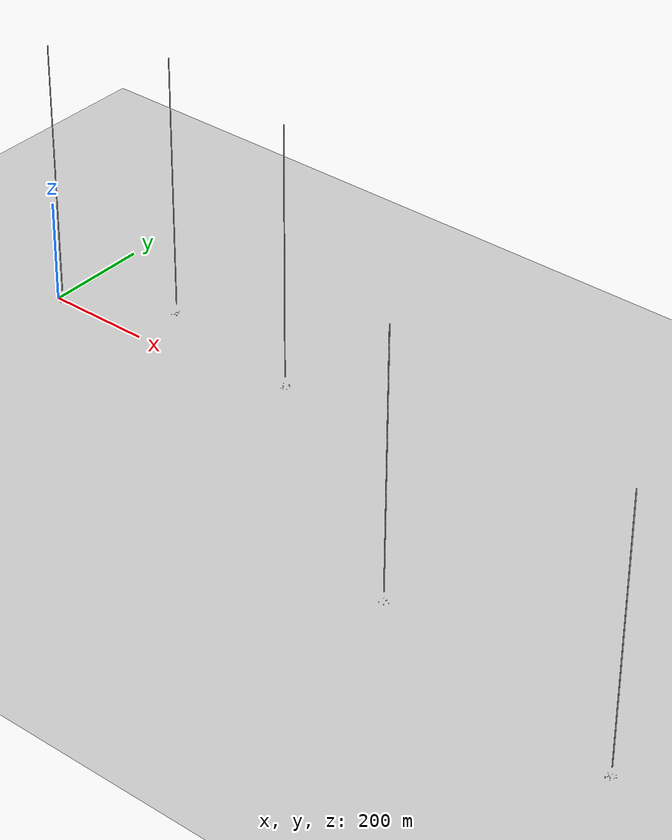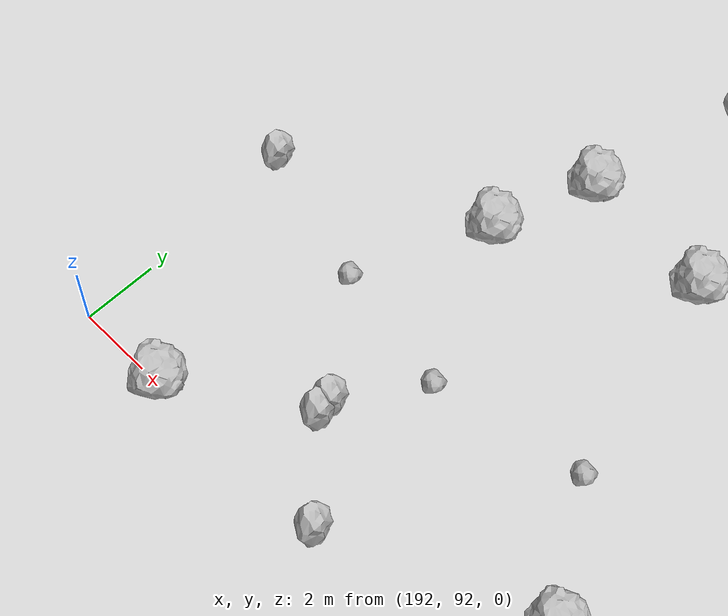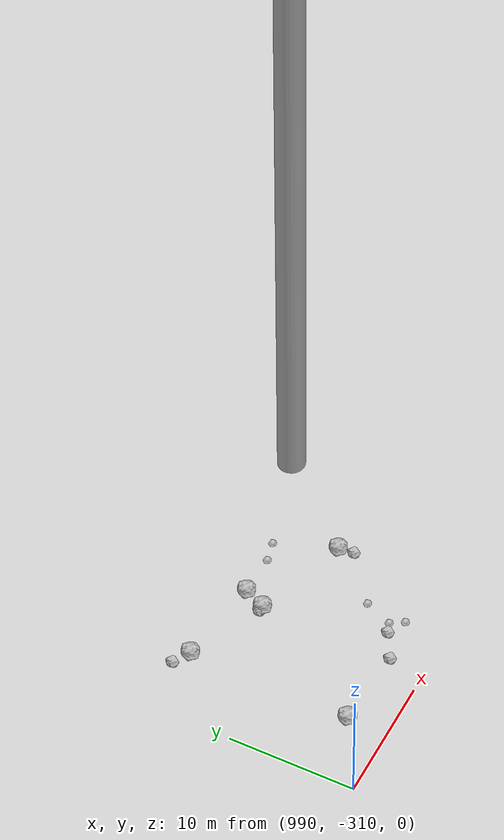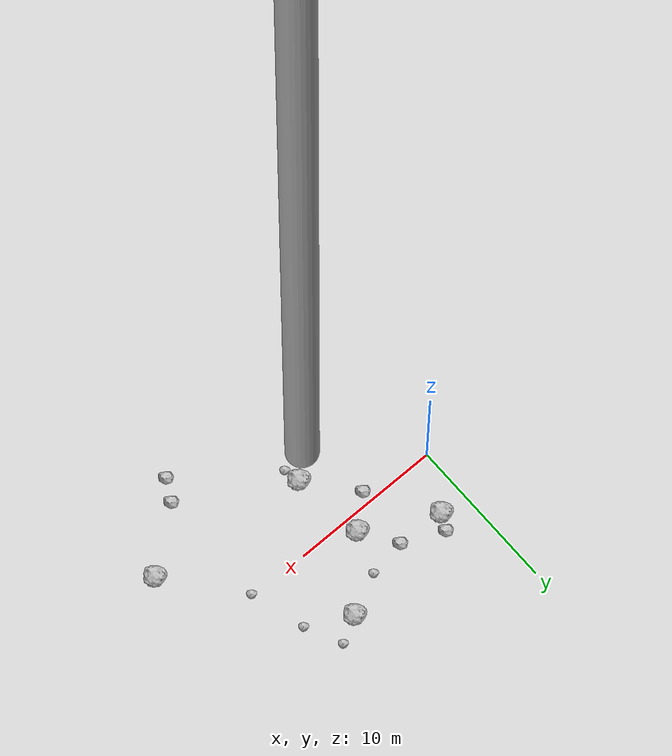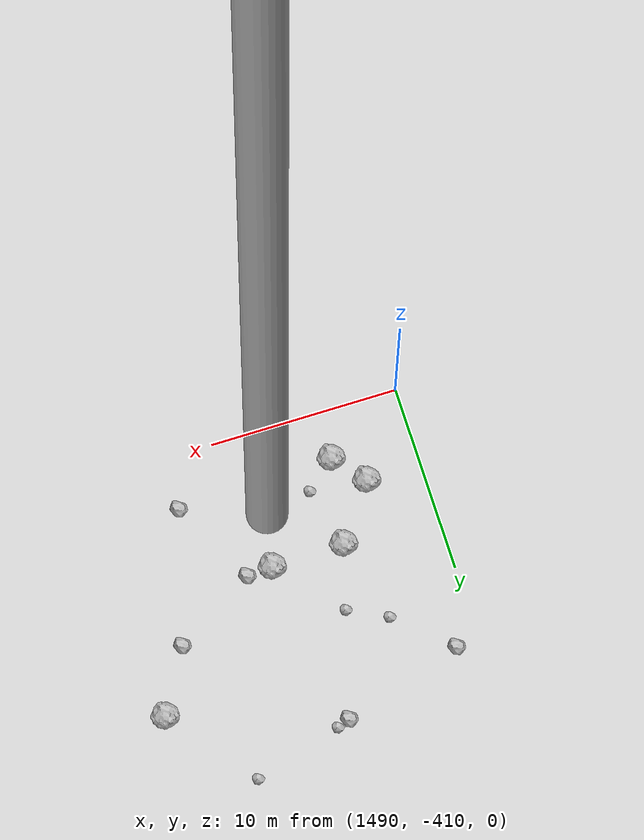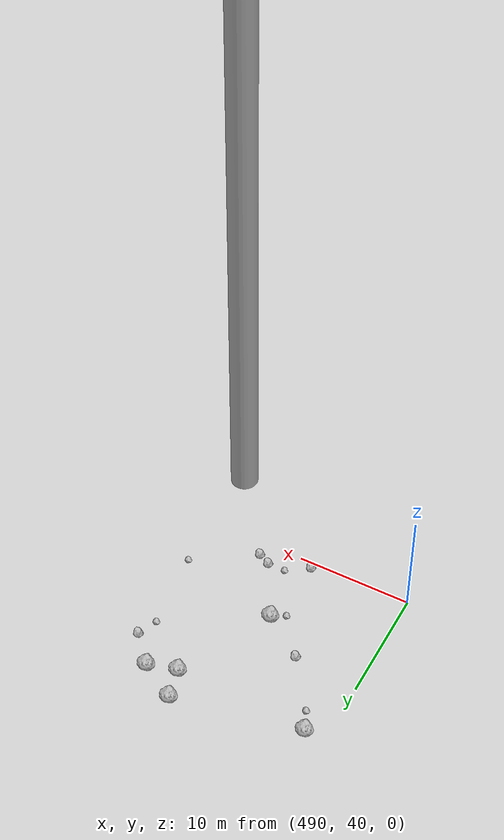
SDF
<?xml version="1.0" ?>
<sdf version="1.6">
  <world name="default">

    <include>
      <uri>model://custom_ground</uri>
    </include>

    <include>
      <uri>model://sun</uri>
    </include>

    <spherical_coordinates>
      <surface_model>EARTH_WGS84</surface_model>
      <latitude_deg>38.161479</latitude_deg>
      <longitude_deg>-122.454630</longitude_deg>
      <elevation>488.0</elevation>
      <heading_deg>90</heading_deg>
    </spherical_coordinates>

    <model name="rock1_0_0">
      <include>
        <uri>model://rock1</uri>
        <pose>1.903809025470613 3.4052893876274677 0.5 0 0 0</pose>
      </include>
    </model>
    <model name="rock1_0_1">
      <include>
        <uri>model://rock1</uri>
        <pose>17.752156283129764 -4.858993381580905 0.5 0 0 0</pose>
      </include>
    </model>
    <model name="rock1_0_2">
      <include>
        <uri>model://rock1</uri>
        <pose>6.545627376117289 0.9424512838125523 0.5 0 0 0</pose>
      </include>
    </model>
    <model name="rock1_0_3">
      <include>
        <uri>model://rock1</uri>
        <pose>7.125065360291671 -3.8455337252434907 0.5 0 0 0</pose>
      </include>
    </model>
    <model name="rock1_0_4">
      <include>
        <uri>model://rock1</uri>
        <pose>10.154929105432641 4.87819296638305 0.5 0 0 0</pose>
      </include>
    </model>
    <model name="rock2_0_0">
      <include>
        <uri>model://rock2</uri>
        <pose>4.571596444963452 -0.7528654541336195 0.3 0 0 0</pose>
      </include>
    </model>
    <model name="rock2_0_1">
      <include>
        <uri>model://rock2</uri>
        <pose>5.024757103439105 3.2480589192254676 0.3 0 0 0</pose>
      </include>
    </model>
    <model name="rock2_0_2">
      <include>
        <uri>model://rock2</uri>
        <pose>13.882769026436684 -7.866449808721061 0.3 0 0 0</pose>
      </include>
    </model>
    <model name="rock2_0_3">
      <include>
        <uri>model://rock2</uri>
        <pose>13.120535906577288 -9.26545420873963 0.3 0 0 0</pose>
      </include>
    </model>
    <model name="rock2_0_4">
      <include>
        <uri>model://rock2</uri>
        <pose>2.3833469673908114 4.4424991326777 0.3 0 0 0</pose>
      </include>
    </model>
    <model name="rock3_0_0">
      <include>
        <uri>model://rock3</uri>
        <pose>11.776888125379683 5.741469331723998 0.2 0 0 0</pose>
      </include>
    </model>
    <model name="rock3_0_1">
      <include>
        <uri>model://rock3</uri>
        <pose>7.47125163695592 3.5784718296653075 0.2 0 0 0</pose>
      </include>
    </model>
    <model name="rock3_0_2">
      <include>
        <uri>model://rock3</uri>
        <pose>7.2761527551707434 -4.948036166785929 0.2 0 0 0</pose>
      </include>
    </model>
    <model name="rock3_0_3">
      <include>
        <uri>model://rock3</uri>
        <pose>13.949429227714694 -0.2528596768601066 0.2 0 0 0</pose>
      </include>
    </model>
    <model name="rock3_0_4">
      <include>
        <uri>model://rock3</uri>
        <pose>12.905492841078232 3.372192133147248 0.2 0 0 0</pose>
      </include>
    </model>
    <model name="rock1_1_0">
      <include>
        <uri>model://rock1</uri>
        <pose>205.16835387460563 94.27478948977179 0.5 0 0 0</pose>
      </include>
    </model>
    <model name="rock1_1_1">
      <include>
        <uri>model://rock1</uri>
        <pose>198.22484847776514 103.78801772446656 0.5 0 0 0</pose>
      </include>
    </model>
    <model name="rock1_1_2">
      <include>
        <uri>model://rock1</uri>
        <pose>194.57397124287016 92.05509015105395 0.5 0 0 0</pose>
      </include>
    </model>
    <model name="rock1_1_3">
      <include>
        <uri>model://rock1</uri>
        <pose>197.25029589440902 100.96667334121011 0.5 0 0 0</pose>
      </include>
    </model>
    <model name="rock1_1_4">
      <include>
        <uri>model://rock1</uri>
        <pose>201.97778175853213 103.29743638436385 0.5 0 0 0</pose>
      </include>
    </model>
    <model name="rock2_1_0">
      <include>
        <uri>model://rock2</uri>
        <pose>191.73724713287712 98.65449151602728 0.3 0 0 0</pose>
      </include>
    </model>
    <model name="rock2_1_1">
      <include>
        <uri>model://rock2</uri>
        <pose>199.2822468913672 108.59665376081696 0.3 0 0 0</pose>
      </include>
    </model>
    <model name="rock2_1_2">
      <include>
        <uri>model://rock2</uri>
        <pose>197.80902664208242 94.21731936639279 0.3 0 0 0</pose>
      </include>
    </model>
    <model name="rock2_1_3">
      <include>
        <uri>model://rock2</uri>
        <pose>197.7694724478469 94.64087718532991 0.3 0 0 0</pose>
      </include>
    </model>
    <model name="rock2_1_4">
      <include>
        <uri>model://rock2</uri>
        <pose>199.77328583823322 92.14825996715689 0.3 0 0 0</pose>
      </include>
    </model>
    <model name="rock3_1_0">
      <include>
        <uri>model://rock3</uri>
        <pose>203.2144070177018 97.41951179414882 0.2 0 0 0</pose>
      </include>
    </model>
    <model name="rock3_1_1">
      <include>
        <uri>model://rock3</uri>
        <pose>202.96473746010147 109.05968550939536 0.2 0 0 0</pose>
      </include>
    </model>
    <model name="rock3_1_2">
      <include>
        <uri>model://rock3</uri>
        <pose>202.9020939234866 104.0637209825544 0.2 0 0 0</pose>
      </include>
    </model>
    <model name="rock3_1_3">
      <include>
        <uri>model://rock3</uri>
        <pose>199.17914778764725 96.66008945381098 0.2 0 0 0</pose>
      </include>
    </model>
    <model name="rock3_1_4">
      <include>
        <uri>model://rock3</uri>
        <pose>195.65800479138898 97.35430800580451 0.2 0 0 0</pose>
      </include>
    </model>
    <model name="rock1_2_0">
      <include>
        <uri>model://rock1</uri>
        <pose>506.0074062011482 55.983606538668305 0.5 0 0 0</pose>
      </include>
    </model>
    <model name="rock1_2_1">
      <include>
        <uri>model://rock1</uri>
        <pose>499.44206564911013 46.87607710319023 0.5 0 0 0</pose>
      </include>
    </model>
    <model name="rock1_2_2">
      <include>
        <uri>model://rock1</uri>
        <pose>502.81466742843094 57.82343090928796 0.5 0 0 0</pose>
      </include>
    </model>
    <model name="rock1_2_3">
      <include>
        <uri>model://rock1</uri>
        <pose>503.47274405276966 55.2496818368076 0.5 0 0 0</pose>
      </include>
    </model>
    <model name="rock1_2_4">
      <include>
        <uri>model://rock1</uri>
        <pose>491.8141693220785 55.493289667582815 0.5 0 0 0</pose>
      </include>
    </model>
    <model name="rock2_2_0">
      <include>
        <uri>model://rock2</uri>
        <pose>502.24402982453717 41.96864489684156 0.3 0 0 0</pose>
      </include>
    </model>
    <model name="rock2_2_1">
      <include>
        <uri>model://rock2</uri>
        <pose>503.32829021941234 41.41864504056599 0.3 0 0 0</pose>
      </include>
    </model>
    <model name="rock2_2_2">
      <include>
        <uri>model://rock2</uri>
        <pose>498.79914290422084 40.66178031986009 0.3 0 0 0</pose>
      </include>
    </model>
    <model name="rock2_2_3">
      <include>
        <uri>model://rock2</uri>
        <pose>508.185113672542 53.567116391587135 0.3 0 0 0</pose>
      </include>
    </model>
    <model name="rock2_2_4">
      <include>
        <uri>model://rock2</uri>
        <pose>495.6819406248647 49.50346586543731 0.3 0 0 0</pose>
      </include>
    </model>
    <model name="rock3_2_0">
      <include>
        <uri>model://rock3</uri>
        <pose>498.2468797360135 46.126282250725644 0.2 0 0 0</pose>
      </include>
    </model>
    <model name="rock3_2_1">
      <include>
        <uri>model://rock3</uri>
        <pose>500.64217788766354 41.91729478216732 0.2 0 0 0</pose>
      </include>
    </model>
    <model name="rock3_2_2">
      <include>
        <uri>model://rock3</uri>
        <pose>507.4700179512403 51.780874371952336 0.2 0 0 0</pose>
      </include>
    </model>
    <model name="rock3_2_3">
      <include>
        <uri>model://rock3</uri>
        <pose>492.49757249041426 53.72952146181118 0.2 0 0 0</pose>
      </include>
    </model>
    <model name="rock3_2_4">
      <include>
        <uri>model://rock3</uri>
        <pose>508.439161013885 44.7847868949409 0.2 0 0 0</pose>
      </include>
    </model>
    <model name="rock1_3_0">
      <include>
        <uri>model://rock1</uri>
        <pose>995.4561176970406 -306.8116007030858 0.5 0 0 0</pose>
      </include>
    </model>
    <model name="rock1_3_1">
      <include>
        <uri>model://rock1</uri>
        <pose>1002.697222062301 -294.8027073355006 0.5 0 0 0</pose>
      </include>
    </model>
    <model name="rock1_3_2">
      <include>
        <uri>model://rock1</uri>
        <pose>995.5691090276594 -293.8359024049037 0.5 0 0 0</pose>
      </include>
    </model>
    <model name="rock1_3_3">
      <include>
        <uri>model://rock1</uri>
        <pose>1001.8692150832815 -296.56242570808 0.5 0 0 0</pose>
      </include>
    </model>
    <model name="rock1_3_4">
      <include>
        <uri>model://rock1</uri>
        <pose>1009.4924539501767 -299.0898394386134 0.5 0 0 0</pose>
      </include>
    </model>
    <model name="rock2_3_0">
      <include>
        <uri>model://rock2</uri>
        <pose>1003.8219924703758 -305.9651709347615 0.3 0 0 0</pose>
      </include>
    </model>
    <model name="rock2_3_1">
      <include>
        <uri>model://rock2</uri>
        <pose>994.1828778523106 -293.0132615768293 0.3 0 0 0</pose>
      </include>
    </model>
    <model name="rock2_3_2">
      <include>
        <uri>model://rock2</uri>
        <pose>1001.6785040433134 -307.1767233713663 0.3 0 0 0</pose>
      </include>
    </model>
    <model name="rock2_3_3">
      <include>
        <uri>model://rock2</uri>
        <pose>1009.5973327076168 -300.31063617482596 0.3 0 0 0</pose>
      </include>
    </model>
    <model name="rock2_3_4">
      <include>
        <uri>model://rock2</uri>
        <pose>1001.3766927470214 -296.4878546281116 0.3 0 0 0</pose>
      </include>
    </model>
    <model name="rock3_3_0">
      <include>
        <uri>model://rock3</uri>
        <pose>1006.0444319125886 -294.7902641027288 0.2 0 0 0</pose>
      </include>
    </model>
    <model name="rock3_3_1">
      <include>
        <uri>model://rock3</uri>
        <pose>1005.6650634139625 -303.4180766745252 0.2 0 0 0</pose>
      </include>
    </model>
    <model name="rock3_3_2">
      <include>
        <uri>model://rock3</uri>
        <pose>1005.3291016721337 -306.71284487636996 0.2 0 0 0</pose>
      </include>
    </model>
    <model name="rock3_3_3">
      <include>
        <uri>model://rock3</uri>
        <pose>1007.7244046012405 -294.38692036409265 0.2 0 0 0</pose>
      </include>
    </model>
    <model name="rock3_3_4">
      <include>
        <uri>model://rock3</uri>
        <pose>1004.7106708147759 -305.67354481311503 0.2 0 0 0</pose>
      </include>
    </model>
    <model name="rock1_4_0">
      <include>
        <uri>model://rock1</uri>
        <pose>1494.3472439406187 -407.41020384020624 0.5 0 0 0</pose>
      </include>
    </model>
    <model name="rock1_4_1">
      <include>
        <uri>model://rock1</uri>
        <pose>1498.9726089346696 -402.75256364808797 0.5 0 0 0</pose>
      </include>
    </model>
    <model name="rock1_4_2">
      <include>
        <uri>model://rock1</uri>
        <pose>1492.9585510542531 -405.74216736501273 0.5 0 0 0</pose>
      </include>
    </model>
    <model name="rock1_4_3">
      <include>
        <uri>model://rock1</uri>
        <pose>1506.4906267732547 -396.83854872319915 0.5 0 0 0</pose>
      </include>
    </model>
    <model name="rock1_4_4">
      <include>
        <uri>model://rock1</uri>
        <pose>1495.1166854384005 -402.83915869307083 0.5 0 0 0</pose>
      </include>
    </model>
    <model name="rock2_4_0">
      <include>
        <uri>model://rock2</uri>
        <pose>1502.6319262590032 -407.14171226375737 0.3 0 0 0</pose>
      </include>
    </model>
    <model name="rock2_4_1">
      <include>
        <uri>model://rock2</uri>
        <pose>1491.225871228013 -395.94037550727853 0.3 0 0 0</pose>
      </include>
    </model>
    <model name="rock2_4_2">
      <include>
        <uri>model://rock2</uri>
        <pose>1504.5654951209551 -400.13810685727304 0.3 0 0 0</pose>
      </include>
    </model>
    <model name="rock2_4_3">
      <include>
        <uri>model://rock2</uri>
        <pose>1497.5935800448885 -393.9484031917294 0.3 0 0 0</pose>
      </include>
    </model>
    <model name="rock2_4_4">
      <include>
        <uri>model://rock2</uri>
        <pose>1500.3113719350354 -402.68927640736257 0.3 0 0 0</pose>
      </include>
    </model>
    <model name="rock3_4_0">
      <include>
        <uri>model://rock3</uri>
        <pose>1502.9044626877755 -392.38019896315564 0.2 0 0 0</pose>
      </include>
    </model>
    <model name="rock3_4_1">
      <include>
        <uri>model://rock3</uri>
        <pose>1495.8880733839987 -406.09944786042377 0.2 0 0 0</pose>
      </include>
    </model>
    <model name="rock3_4_2">
      <include>
        <uri>model://rock3</uri>
        <pose>1498.2509229617385 -393.740331254141 0.2 0 0 0</pose>
      </include>
    </model>
    <model name="rock3_4_3">
      <include>
        <uri>model://rock3</uri>
        <pose>1496.0138073607675 -399.5153619081299 0.2 0 0 0</pose>
      </include>
    </model>
    <model name="rock3_4_4">
      <include>
        <uri>model://rock3</uri>
        <pose>1493.9837796265233 -398.4925788425436 0.2 0 0 0</pose>
      </include>
    </model>

    <model name="cylinder_1">
      <static>true</static>
      <link name="link">
        <visual name="visual">
          <geometry>
            <cylinder>
              <radius>1</radius>
              <length>500</length>
            </cylinder>
          </geometry>
        </visual>
      </link>
      <pose>10 0 270 0 0 0</pose>
    </model>

    <model name="cylinder_2">
      <static>true</static>
      <link name="link">
        <visual name="visual">
          <geometry>
            <cylinder>
              <radius>1</radius>
              <length>500</length>
            </cylinder>
          </geometry>
        </visual>
      </link>
      <pose>200 100 270 0 0 0</pose>
    </model>

    <model name="cylinder_3">
      <static>true</static>
      <link name="link">
        <visual name="visual">
          <geometry>
            <cylinder>
              <radius>1</radius>
              <length>500</length>
            </cylinder>
          </geometry>
        </visual>
      </link>
      <pose>500 50 270 0 0 0</pose>
    </model>

    <model name="cylinder_4">
      <static>true</static>
      <link name="link">
        <visual name="visual">
          <geometry>
            <cylinder>
              <radius>1</radius>
              <length>500</length>
            </cylinder>
          </geometry>
        </visual>
      </link>
      <pose>1000 -300 270 0 0 0</pose>
    </model>

    <model name="cylinder_5">
      <static>true</static>
      <link name="link">
        <visual name="visual">
          <geometry>
            <cylinder>
              <radius>1</radius>
              <length>500</length>
            </cylinder>
          </geometry>
        </visual>
      </link>
      <pose>1500 -400 270 0 0 0</pose>
    </model>

  </world>
</sdf>

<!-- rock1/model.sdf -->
<sdf version="1.6">
  <model name="rock1">
    <static>true</static> <!-- Set to true if the model should not move -->
    <pose>0 0 0 0 0 0</pose>

    <!--z offset is 0.5 for full scale-->

    <link name="link">
      <collision name="rock1_collision">
        <geometry>
          <mesh>
            <uri>model://meshes/rock1.dae</uri>
          </mesh>
        </geometry>
      </collision>
      <visual name="rock1_visual">
        <geometry>
          <mesh>
            <uri>model://meshes/rock1.dae</uri>
          </mesh>
        </geometry>
        <material>
          <script>
            <uri>model://materials/scripts/sand_pebbles.material</uri>
            <name>custom_ground/Image</name>
          </script>
        </material>
      </visual>
    </link>
  </model>
</sdf>

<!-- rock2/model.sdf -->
<sdf version="1.6">
  <model name="rock2">
    <static>true</static> <!-- Set to true if the model should not move -->
    <pose>0 0 0 0 0 0</pose>

    <!--z offset is 0.3 for full scale-->

    <link name="link">
      <collision name="rock2_collision">
        <geometry>
          <mesh>
            <uri>model://meshes/rock2.dae</uri>
          </mesh>
        </geometry>
      </collision>
      <visual name="rock2_visual">
        <geometry>
          <mesh>
            <uri>model://meshes/rock2.dae</uri>
          </mesh>
        </geometry>
        <material>
          <script>
            <uri>model://materials/scripts/sand_pebbles.material</uri>
            <name>custom_ground/Image</name>
          </script>
        </material>
      </visual>
    </link>
  </model>
</sdf>

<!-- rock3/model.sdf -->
<sdf version="1.6">
  <model name="rock3">
    <static>true</static> <!-- Set to true if the model should not move -->
    <pose>0 0 0 0 0 0</pose>

    <!--z offset is 0.2 for full scale-->

    <link name="link">
      <collision name="rock3_collision">
        <geometry>
          <mesh>
            <uri>model://meshes/rock3.dae</uri>
          </mesh>
        </geometry>
      </collision>
      <visual name="rock3_visual">
        <geometry>
          <mesh>
            <uri>model://meshes/rock3.dae</uri>
          </mesh>
        </geometry>
        <material>
          <script>
            <uri>model://materials/scripts/sand_pebbles.material</uri>
            <name>custom_ground/Image</name>
          </script>
        </material>
      </visual>
    </link>
  </model>
</sdf>

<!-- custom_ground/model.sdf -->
<sdf version="1.6">
  <model name="custom_ground">
    <static>true</static> <!-- Ground is static and immovable -->
    <link name="ground_link">
      <pose>240 0 0 0 0 0</pose> <!-- Position and orientation relative to the world -->
      <!-- Visual Representation -->
      <visual name="ground_visual">
        <geometry>
          <plane>
            <normal>0 0 1</normal> <!-- Upward facing plane -->
            <size>500 500</size> <!-- Size of the plane -->
          </plane>
        </geometry>
        <material>
          <script>
            <uri>model://materials/scripts/sand_pebbles.material</uri>
            <name>custom_ground/Image</name>
          </script>
        </material>
      </visual>

      <!-- Collision Representation -->
      <collision name="ground_collision">
        <geometry>
          <plane>
            <normal>0 0 1</normal>
            <size>100 100</size>
          </plane>
        </geometry>
      </collision>

    </link>
  </model>
</sdf>
